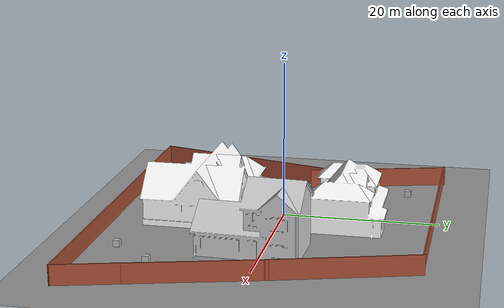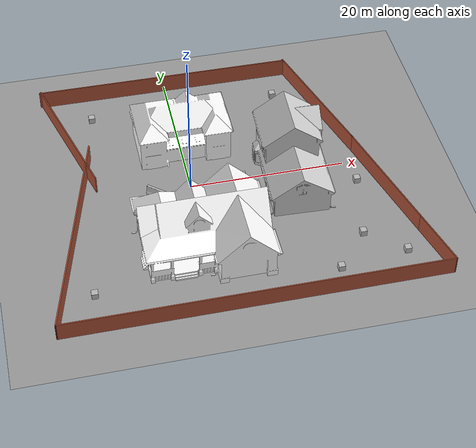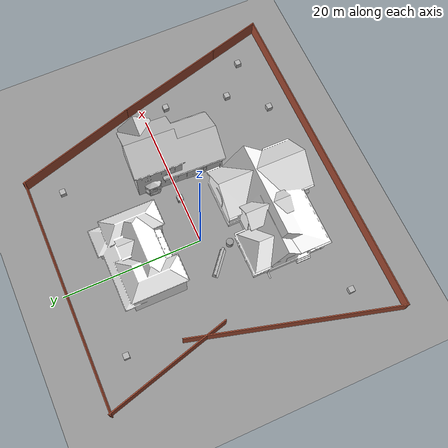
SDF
<sdf version="1.6">
 <world name="default">
  <light name="sun" type="directional">
   <pose>0 0 10 0 -0 0</pose>
   <diffuse>0.8 0.8 0.8 1</diffuse>
   <specular>0.2 0.2 0.2 1</specular>
   <attenuation>
    <range>1000</range>
    <constant>0.9</constant>
    <linear>0.01</linear>
    <quadratic>0.001</quadratic>
   </attenuation>
   <direction>0.5 0.1 -0.9</direction>
  </light>
  <scene><ambient>0.4 0.4 0.4 1</ambient><background>0.7 0.7 0.7 1</background><shadows>1</shadows></scene>
  <physics name="default_physics" default="0" type="ode">
   <max_step_size>0.01</max_step_size>
   <real_time_factor>1</real_time_factor>
   <real_time_update_rate>100</real_time_update_rate>
  </physics>
  <model name="jersey_barrier">
   <static>1</static>
   <link name="link">
    <visual name="visual">
     <geometry><mesh><uri>model://jersey_barrier/meshes/jersey_barrier.dae</uri></mesh></geometry>
    </visual>
    <collision name="upright">
     <pose>0 0 0.5715 0 -0 0</pose>
     <geometry><box><size>4.06542 0.3063 1.143</size></box></geometry>
    </collision>
    <collision name="base">
     <pose>0 0 0.032258 0 -0 0</pose>
     <geometry><box><size>4.06542 0.8107 0.064516</size></box></geometry>
    </collision>
    <collision name="base2">
     <pose>0 0 0.1 0 -0 0</pose>
     <geometry><box><size>4.06542 0.65 0.1</size></box></geometry>
    </collision>
    <collision name="base3">
     <pose>0 0 0.2 0 -0 0</pose>
     <geometry><box><size>4.06542 0.5 0.1</size></box></geometry>
    </collision>
    <collision name="left-angle">
     <pose>0 -0.224 0.2401 0.9 -0 0</pose>
     <geometry><box><size>4.06542 0.5 0.064516</size></box></geometry>
    </collision>
    <collision name="right-angle">
     <pose>0 0.224 0.2401 -0.9 0 0</pose>
     <geometry><box><size>4.06542 0.5 0.064516</size></box></geometry>
    </collision>
    <velocity_decay><linear>0</linear><angular>0</angular></velocity_decay>
   </link>
   <pose>-4 -1 0 0 0 -0.7</pose>
  </model>
  <model name="ground_plane_0">
   <static>1</static>
   <link name="link">
    <collision name="collision">
     <geometry><plane><normal>0 0 1</normal><size>100 100</size></plane></geometry>
     <surface><friction><ode><mu>100</mu><mu2>50</mu2></ode></friction></surface>
    </collision>
    <visual name="visual">
     <cast_shadows>0</cast_shadows>
     <geometry><plane><normal>0 0 1</normal><size>100 100</size></plane></geometry>
     <material>
      <script><uri>file://media/materials/scripts/gazebo.material</uri><name>Gazebo/Grey</name></script>
     </material>
    </visual>
    <velocity_decay><linear>0</linear><angular>0</angular></velocity_decay>
   </link>
   <pose>0.497681 0 0 0 -0 0</pose>
  </model>
  <model name="unit_cylinder_1">
   <pose>-2 -3.4888 0.49912 -0 -0 -0</pose>
   <link name="link">
    <inertial>
     <mass>1</mass>
     <inertia><ixx>1</ixx><ixy>0</ixy><ixz>0</ixz><iyy>1</iyy><iyz>0</iyz><izz>1</izz></inertia>
    </inertial>
    <collision name="collision">
     <geometry><cylinder><radius>0.5</radius><length>1</length></cylinder></geometry>
    </collision>
    <visual name="visual">
     <geometry><cylinder><radius>0.5</radius><length>1</length></cylinder></geometry>
     <material>
      <script><uri>file://media/materials/scripts/gazebo.material</uri><name>Gazebo/Grey</name></script>
     </material>
    </visual>
    <velocity_decay><linear>0</linear><angular>0</angular></velocity_decay>
   </link>
   <static>0</static>
  </model>
  <gravity>0 0 -9.8</gravity>
  <magnetic_field>6e-06 2.3e-05 -4.2e-05</magnetic_field>
  <atmosphere type="adiabatic"/>
  <audio><device>default</device></audio>
  <spherical_coordinates>
   <surface_model>EARTH_WGS84</surface_model>
   <latitude_deg>0</latitude_deg>
   <longitude_deg>0</longitude_deg>
   <elevation>0</elevation>
   <heading_deg>0</heading_deg>
  </spherical_coordinates>
  <model name="House 1">
   <static>1</static>
   <link name="link">
    <collision name="collision">
     <geometry><mesh><uri>model://house_1/meshes/house_1.dae</uri><scale>1.5 1.5 1.5</scale></mesh></geometry>
    </collision>
    <visual name="visual">
     <geometry><mesh><uri>model://house_1/meshes/house_1.dae</uri><scale>1.5 1.5 1.5</scale></mesh></geometry>
     <material>
      <script>
       <uri>model://house_1/materials/scripts</uri>
       <uri>model://house_1/materials/textures</uri>
       <name>House_1/Diffuse</name>
      </script>
      <shader type="normal_map_tangent_space"><normal_map>House_1_Normal.png</normal_map></shader>
     </material>
    </visual>
   </link>
   <pose>-0.026762 -10.0901 0 0 -0 0</pose>
  </model>
  <model name="House 2">
   <static>1</static>
   <link name="link">
    <collision name="collision">
     <geometry><mesh><uri>model://house_2/meshes/house_2.dae</uri><scale>1.5 1.5 1.5</scale></mesh></geometry>
    </collision>
    <visual name="visual">
     <geometry><mesh><uri>model://house_2/meshes/house_2.dae</uri><scale>1.5 1.5 1.5</scale></mesh></geometry>
     <material>
      <script>
       <uri>model://house_2/materials/scripts</uri>
       <uri>model://house_2/materials/textures</uri>
       <uri>model://house_1/materials/textures</uri>
       <name>House_2/Diffuse</name>
      </script>
      <shader type="normal_map_tangent_space">
       <normal_map>model://house_1/materials/textures/House_1_Normal.png</normal_map>
      </shader>
     </material>
    </visual>
   </link>
   <pose>-0.648427 8.12167 0 0 -0 0</pose>
  </model>
  <model name="House 3">
   <static>1</static>
   <link name="link">
    <collision name="collision">
     <geometry><mesh><uri>model://house_3/meshes/house_3.dae</uri><scale>1.5 1.5 1.5</scale></mesh></geometry>
    </collision>
    <visual name="visual">
     <geometry><mesh><uri>model://house_3/meshes/house_3.dae</uri><scale>1.5 1.5 1.5</scale></mesh></geometry>
     <material>
      <script>
       <uri>model://house_3/materials/scripts</uri>
       <uri>model://house_3/materials/textures</uri>
       <uri>model://house_1/materials/textures</uri>
       <name>House_3/Diffuse</name>
      </script>
      <shader type="normal_map_tangent_space">
       <normal_map>model://house_1/materials/textures/House_1_Normal.png</normal_map>
      </shader>
     </material>
    </visual>
   </link>
   <pose>12.9215 -1.74557 0 0 0 -1.61094</pose>
  </model>
  <model name="Untitled">
   <pose>4.22893 -0.678999 0 0 -0 0</pose>
   <link name="Wall_10">
    <collision name="Wall_10_Collision">
     <geometry><box><size>47.75 0.15 2.5</size></box></geometry>
     <pose>0 0 1.25 0 -0 0</pose>
    </collision>
    <visual name="Wall_10_Visual">
     <pose>0 0 1.25 0 -0 0</pose>
     <geometry><box><size>47.75 0.15 2.5</size></box></geometry>
     <material>
      <script><uri>file://media/materials/scripts/gazebo.material</uri><name>Gazebo/Bricks</name></script>
      <ambient>1 1 1 1</ambient>
     </material>
     <meta><layer>0</layer></meta>
    </visual>
    <pose>0 -20.2786 0 0 -0 3.14159</pose>
   </link>
   <link name="Wall_11">
    <collision name="Wall_11_Collision">
     <geometry><box><size>29.75 0.15 2.5</size></box></geometry>
     <pose>0 0 1.25 0 -0 0</pose>
    </collision>
    <visual name="Wall_11_Visual">
     <pose>0 0 1.25 0 -0 0</pose>
     <geometry><box><size>29.75 0.15 2.5</size></box></geometry>
     <material>
      <script><uri>file://media/materials/scripts/gazebo.material</uri><name>Gazebo/Bricks</name></script>
      <ambient>1 1 1 1</ambient>
     </material>
     <meta><layer>0</layer></meta>
    </visual>
    <pose>-19.9695 -5.98292 0 0 -0 1.309</pose>
   </link>
   <link name="Wall_4">
    <collision name="Wall_4_Collision">
     <geometry><box><size>18.7897 0.15 2.5</size></box></geometry>
     <pose>0 0 1.25 0 -0 0</pose>
    </collision>
    <visual name="Wall_4_Visual">
     <pose>0 0 1.25 0 -0 0</pose>
     <geometry><box><size>18.7897 0.15 2.5</size></box></geometry>
     <material>
      <script><uri>file://media/materials/scripts/gazebo.material</uri><name>Gazebo/Bricks</name></script>
      <ambient>1 1 1 1</ambient>
     </material>
     <meta><layer>0</layer></meta>
    </visual>
    <pose>-18.5606 11.2877 0 0 -0 1.83736</pose>
   </link>
   <link name="Wall_5">
    <collision name="Wall_5_Collision">
     <geometry><box><size>33.8723 0.15 2.5</size></box></geometry>
     <pose>0 0 1.25 0 -0 0</pose>
    </collision>
    <visual name="Wall_5_Visual">
     <pose>0 0 1.25 0 -0 0</pose>
     <geometry><box><size>33.8723 0.15 2.5</size></box></geometry>
     <material>
      <script><uri>file://media/materials/scripts/gazebo.material</uri><name>Gazebo/Bricks</name></script>
      <ambient>1 1 1 1</ambient>
     </material>
     <meta><layer>0</layer></meta>
    </visual>
    <pose>-4.31811 20.0329 0 0 -0 -0.004853</pose>
   </link>
   <link name="Wall_6">
    <collision name="Wall_6_Collision">
     <geometry><box><size>18.1956 0.15 2.5</size></box></geometry>
     <pose>0 0 1.25 0 -0 0</pose>
    </collision>
    <visual name="Wall_6_Visual">
     <pose>0 0 1.25 0 -0 0</pose>
     <geometry><box><size>18.1956 0.15 2.5</size></box></geometry>
     <material>
      <script><uri>file://media/materials/scripts/gazebo.material</uri><name>Gazebo/Bricks</name></script>
      <ambient>1 1 1 1</ambient>
     </material>
     <meta><layer>0</layer></meta>
    </visual>
    <pose>15.0799 11.4559 0 0 -0 -1.2858</pose>
   </link>
   <link name="Wall_8">
    <collision name="Wall_8_Collision">
     <geometry><box><size>16.5 0.15 2.5</size></box></geometry>
     <pose>0 0 1.25 0 -0 0</pose>
    </collision>
    <visual name="Wall_8_Visual">
     <pose>0 0 1.25 0 -0 0</pose>
     <geometry><box><size>16.5 0.15 2.5</size></box></geometry>
     <material>
      <script><uri>file://media/materials/scripts/gazebo.material</uri><name>Gazebo/Bricks</name></script>
      <ambient>1 1 1 1</ambient>
     </material>
     <meta><layer>0</layer></meta>
    </visual>
    <pose>19.6524 -4.79966 0 0 -0 -1.309</pose>
   </link>
   <link name="Wall_9">
    <collision name="Wall_9_Collision">
     <geometry><box><size>8 0.15 2.5</size></box></geometry>
     <pose>0 0 1.25 0 -0 0</pose>
    </collision>
    <visual name="Wall_9_Visual">
     <pose>0 0 1.25 0 -0 0</pose>
     <geometry><box><size>8 0.15 2.5</size></box></geometry>
     <material>
      <script><uri>file://media/materials/scripts/gazebo.material</uri><name>Gazebo/Bricks</name></script>
      <ambient>1 1 1 1</ambient>
     </material>
     <meta><layer>0</layer></meta>
    </visual>
    <pose>22.7841 -16.4874 0 0 -0 -1.309</pose>
   </link>
   <static>1</static>
  </model>
  <model name="number2">
   <pose>19.0973 -12.6008 0.4 0 -0 0</pose>
   <static>1</static>
   <link name="link">
    <visual name="visual">
     <geometry><mesh><uri>model://number1/meshes/number.dae</uri></mesh></geometry>
     <material>
      <script>
       <uri>model://number2/materials/scripts</uri>
       <uri>model://number2/materials/textures</uri>
       <name>Number/Two</name>
      </script>
     </material>
    </visual>
   </link>
  </model>
  <model name="number3">
   <pose>14.934 -17.5686 0.4 0 -0 0</pose>
   <static>1</static>
   <link name="link">
    <visual name="visual">
     <geometry><mesh><uri>model://number1/meshes/number.dae</uri></mesh></geometry>
     <material>
      <script>
       <uri>model://number3/materials/scripts</uri>
       <uri>model://number3/materials/textures</uri>
       <name>Number/Three</name>
      </script>
     </material>
    </visual>
   </link>
  </model>
  <model name="number4">
   <pose>20.9082 -3.52251 0.4 0 -0 0</pose>
   <static>1</static>
   <link name="link">
    <visual name="visual">
     <geometry><mesh><uri>model://number1/meshes/number.dae</uri></mesh></geometry>
     <material>
      <script>
       <uri>model://number4/materials/scripts</uri>
       <uri>model://number4/materials/textures</uri>
       <name>Number/Four</name>
      </script>
     </material>
    </visual>
   </link>
  </model>
  <model name="number5">
   <pose>14.1744 14.9418 0.4 0 -0 0</pose>
   <static>1</static>
   <link name="link">
    <visual name="visual">
     <geometry><mesh><uri>model://number1/meshes/number.dae</uri></mesh></geometry>
     <material>
      <script>
       <uri>model://number5/materials/scripts</uri>
       <uri>model://number5/materials/textures</uri>
       <name>Number/Five</name>
      </script>
     </material>
    </visual>
   </link>
  </model>
  <model name="number6">
   <pose>-10.6488 15.0973 0.4 0 -0 0</pose>
   <static>1</static>
   <link name="link">
    <visual name="visual">
     <geometry><mesh><uri>model://number1/meshes/number.dae</uri></mesh></geometry>
     <material>
      <script>
       <uri>model://number6/materials/scripts</uri>
       <uri>model://number6/materials/textures</uri>
       <name>Number/Six</name>
      </script>
     </material>
    </visual>
   </link>
  </model>
  <model name="number7">
   <pose>-14.5118 -15.5872 0.4 0 -0 0</pose>
   <static>1</static>
   <link name="link">
    <visual name="visual">
     <geometry><mesh><uri>model://number1/meshes/number.dae</uri></mesh></geometry>
     <material>
      <script>
       <uri>model://number7/materials/scripts</uri>
       <uri>model://number7/materials/textures</uri>
       <name>Number/Seven</name>
      </script>
     </material>
    </visual>
   </link>
  </model>
  <model name="number8">
   <pose>6.75919 0.179081 0.4 0 -0 0</pose>
   <static>1</static>
   <link name="link">
    <visual name="visual">
     <geometry><mesh><uri>model://number1/meshes/number.dae</uri></mesh></geometry>
     <material>
      <script>
       <uri>model://number8/materials/scripts</uri>
       <uri>model://number8/materials/textures</uri>
       <name>Number/Eight</name>
      </script>
     </material>
    </visual>
   </link>
  </model>
  <model name="number9">
   <pose>23.5925 -16.4689 0.4 0 -0 0</pose>
   <static>1</static>
   <link name="link">
    <visual name="visual">
     <geometry><mesh><uri>model://number1/meshes/number.dae</uri></mesh></geometry>
     <material>
      <script>
       <uri>model://number9/materials/scripts</uri>
       <uri>model://number9/materials/textures</uri>
       <name>Number/Nine</name>
      </script>
     </material>
    </visual>
   </link>
  </model>
 </world>
</sdf>
